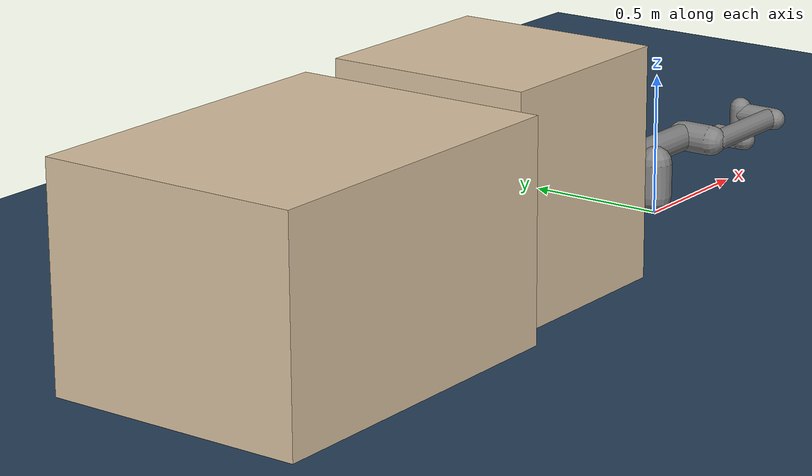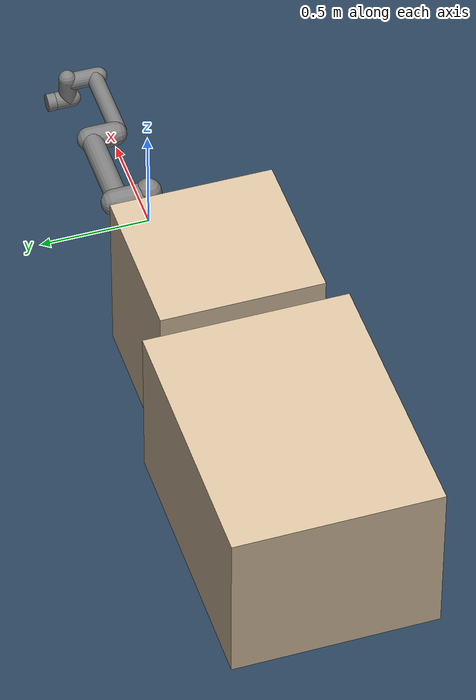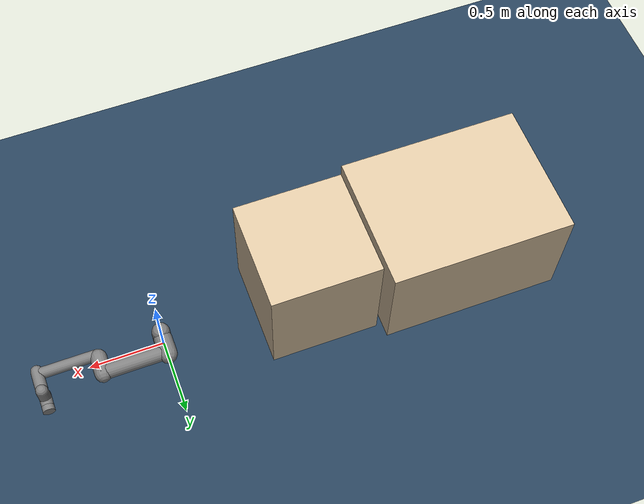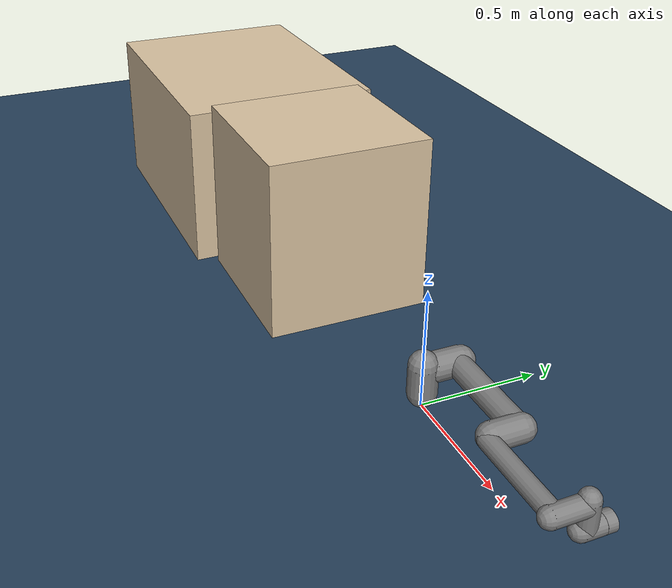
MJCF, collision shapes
<mujoco model="ur5e scene with obstacles">

    <!-- UR5e -->
    <include file="ur5e.xml"/>

    <!-- Base table -->
    <include file="base_table.xml"/>

    <!-- Object table -->
    <include file="object_table.xml"/>

    <statistic center="0.3 0 0.4" extent="0.8"/>

    <visual>
      <headlight diffuse="0.6 0.6 0.6"  ambient="0.1 0.1 0.1" specular="0 0 0"/>
      <rgba haze="0.15 0.25 0.35 1"/>
      <global azimuth="120" elevation="-20"/>
    </visual>

    <asset>
      <texture type="skybox" builtin="gradient" rgb1="0.3 0.5 0.7" rgb2="0 0 0" width="512"
          height="3072"/>
      <texture type="2d" name="groundplane" builtin="checker" mark="edge" rgb1="0.2 0.3 0.4"
          rgb2="0.1 0.2 0.3" markrgb="0.8 0.8 0.8" width="300" height="300"/>
      <material name="groundplane" texture="groundplane" texuniform="true" texrepeat="5 5"
          reflectance="0.2"/>
    </asset>

    <worldbody>
      <light pos="0 0 1.5" dir="0 0 -1" directional="true"/>
      <geom name="floor" size="0 0 0.05" type="plane" material="groundplane"/>
    </worldbody>

  </mujoco>

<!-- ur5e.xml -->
<mujoco model="ur5e">
  <compiler angle="radian" meshdir="assets" autolimits="true"/>

  <default>
    <joint axis="0 1 0" range="-6.28319 6.28319"/>
    <position ctrlrange="-6.2831 6.2831"/>

    <default class="visual">
      <geom type="mesh" contype="0" conaffinity="0" group="2"/>
    </default>
    <default class="collision">
      <geom type="capsule" group="3"/>
      <default class="eef_collision">
        <geom type="cylinder"/>
      </default>
    </default>
    <site size="0.001" rgba="0.5 0.5 0.5 0.3" group="4"/>

    <!-- Reference:
      https://www.universal-robots.com/articles/ur/robot-care-maintenance/max-joint-torques/ -->
    <default class="size3">
      <joint armature="0.1" damping="200"/>
      <position kp="3500" forcerange="-500 500"/>
      <default class="size3_limited">
        <joint range="-3.1415 3.1415"/>
        <position ctrlrange="-3.1415 3.1415"/>
      </default>
    </default>
    <default class="size1">
      <joint armature="0.1" damping="15"/>
      <position kp="3000" forcerange="-28 28"/>
    </default>
  </default>

  <asset>
    <material name="black" specular="0.5" shininess="0.25" rgba="0.033 0.033 0.033 1"/>
    <material name="jointgray" specular="0.5" shininess="0.25" rgba="0.278 0.278 0.278 1"/>
    <material name="linkgray" specular="0.5" shininess="0.25" rgba="0.82 0.82 0.82 1"/>
    <material name="urblue" specular="0.5" shininess="0.25" rgba="0.49 0.678 0.8 1"/>

    <mesh file="base_0.obj"/>
    <mesh file="base_1.obj"/>
    <mesh file="shoulder_0.obj"/>
    <mesh file="shoulder_1.obj"/>
    <mesh file="shoulder_2.obj"/>
    <mesh file="upperarm_0.obj"/>
    <mesh file="upperarm_1.obj"/>
    <mesh file="upperarm_2.obj"/>
    <mesh file="upperarm_3.obj"/>
    <mesh file="forearm_0.obj"/>
    <mesh file="forearm_1.obj"/>
    <mesh file="forearm_2.obj"/>
    <mesh file="forearm_3.obj"/>
    <mesh file="wrist1_0.obj"/>
    <mesh file="wrist1_1.obj"/>
    <mesh file="wrist1_2.obj"/>
    <mesh file="wrist2_0.obj"/>
    <mesh file="wrist2_1.obj"/>
    <mesh file="wrist2_2.obj"/>
    <mesh file="wrist3.obj"/>
  </asset>

  <worldbody>
    <light name="spotlight" mode="targetbodycom" target="wrist_2_link" pos="0 -1 2"/>
    <body name="base" pos="0 0 0" quat="1 0 0 0">
      <inertial mass="4.0" pos="0 0 0" diaginertia="0.00443333156 0.00443333156 0.0072"/>
      <geom mesh="base_0" material="black" class="visual"/>
      <geom mesh="base_1" material="jointgray" class="visual"/>
      <body name="shoulder_link" pos="0 0 0.163">
        <inertial mass="3.7" pos="0 0 0" diaginertia="0.0102675 0.0102675 0.00666"/>
        <joint name="shoulder_pan_joint" class="size3" axis="0 0 1"/>
        <geom mesh="shoulder_0" material="urblue" class="visual"/>
        <geom mesh="shoulder_1" material="black" class="visual"/>
        <geom mesh="shoulder_2" material="jointgray" class="visual"/>
        <geom class="collision" size="0.06 0.06" pos="0 0 -0.04"/>
        <body name="upper_arm_link" pos="0 0.138 0" quat="1 0 1 0">
          <inertial mass="8.393" pos="0 0 0.2125" diaginertia="0.133886 0.133886 0.0151074"/>
          <joint name="shoulder_lift_joint" class="size3"/>
          <geom mesh="upperarm_0" material="linkgray" class="visual"/>
          <geom mesh="upperarm_1" material="black" class="visual"/>
          <geom mesh="upperarm_2" material="jointgray" class="visual"/>
          <geom mesh="upperarm_3" material="urblue" class="visual"/>
          <geom class="collision" pos="0 -0.04 0" quat="1 1 0 0" size="0.06 0.06"/>
          <geom class="collision" size="0.05 0.2" pos="0 0 0.2"/>
          <body name="forearm_link" pos="0 -0.131 0.425">
            <inertial mass="2.275" pos="0 0 0.196" diaginertia="0.0311796 0.0311796 0.004095"/>
            <joint name="elbow_joint" class="size3_limited"/>
            <geom mesh="forearm_0" material="urblue" class="visual"/>
            <geom mesh="forearm_1" material="linkgray" class="visual"/>
            <geom mesh="forearm_2" material="black" class="visual"/>
            <geom mesh="forearm_3" material="jointgray" class="visual"/>
            <geom class="collision" pos="0 0.08 0" quat="1 1 0 0" size="0.055 0.06"/>
            <geom class="collision" size="0.038 0.19" pos="0 0 0.2"/>
            <body name="wrist_1_link" pos="0 0 0.392" quat="1 0 1 0">
              <inertial mass="1.219" pos="0 0.127 0" diaginertia="0.0025599 0.0025599 0.0021942"/>
              <joint name="wrist_1_joint" class="size1"/>
              <geom mesh="wrist1_0" material="black" class="visual"/>
              <geom mesh="wrist1_1" material="urblue" class="visual"/>
              <geom mesh="wrist1_2" material="jointgray" class="visual"/>
              <geom class="collision" pos="0 0.05 0" quat="1 1 0 0" size="0.04 0.07"/>
              <body name="wrist_2_link" pos="0 0.127 0">
                <inertial mass="1.219" pos="0 0 0.1" diaginertia="0.0025599 0.0025599 0.0021942"/>
                <joint name="wrist_2_joint" axis="0 0 1" class="size1"/>
                <geom mesh="wrist2_0" material="black" class="visual"/>
                <geom mesh="wrist2_1" material="urblue" class="visual"/>
                <geom mesh="wrist2_2" material="jointgray" class="visual"/>
                <geom class="collision" size="0.04 0.06" pos="0 0 0.04"/>
                <geom class="collision" pos="0 0.02 0.1" quat="1 1 0 0" size="0.04 0.04"/>
                <body name="wrist_3_link" pos="0 0 0.1">
                  <inertial mass="0.1889" pos="0 0.0771683 0" quat="1 0 0 1"
                      diaginertia="0.000132134 9.90863e-05 9.90863e-05"/>
                  <joint name="wrist_3_joint" class="size1"/>
                  <geom material="linkgray" mesh="wrist3" class="visual"/>
                  <geom class="eef_collision" pos="0 0.08 0" quat="1 1 0 0" size="0.04 0.02"/>
                  <site name="attachment_site" pos="0 0.1 0" quat="-1 1 0 0"/>
                </body>
              </body>
            </body>
          </body>
        </body>
      </body>
    </body>
  </worldbody>

  <actuator>
    <position class="size3" name="shoulder_pan" joint="shoulder_pan_joint"/>
    <position class="size3" name="shoulder_lift" joint="shoulder_lift_joint"/>
    <position class="size3_limited" name="elbow" joint="elbow_joint"/>
    <position class="size1" name="wrist_1" joint="wrist_1_joint"/>
    <position class="size1" name="wrist_2" joint="wrist_2_joint"/>
    <position class="size1" name="wrist_3" joint="wrist_3_joint"/>
  </actuator>

  <keyframe>
    <key name="home" qpos="-1.5708 -1.5708 1.5708 -1.5708 -1.5708 0"
        ctrl="-1.5708 -1.5708 1.5708 -1.5708 -1.5708 0"/>
  </keyframe>
</mujoco>

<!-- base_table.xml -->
<mujocoinclude>

    <worldbody>
        <body name="base_table" pos="-1 0 0" euler="0 0 0">
            <geom size="0.36 0.36 0.395" pos="0 0 0.395" type="box" rgba="0.85 0.76 0.63 1"/>
            <inertial pos="0 0 0" mass="1" diaginertia="0 0 0" />
        </body>
    </worldbody>

</mujocoinclude>

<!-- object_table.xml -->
<mujocoinclude>

    <worldbody>
        <body name="object_table" pos="-2 0 0" euler="0 0 0">
            <geom size="0.6 0.45 0.37" pos="0 0 0.37" type="box" rgba="0.85 0.76 0.63 1"/>
            <inertial pos="0 0 0" mass="1" diaginertia="0 0 0" />
        </body>
    </worldbody>

</mujocoinclude>
